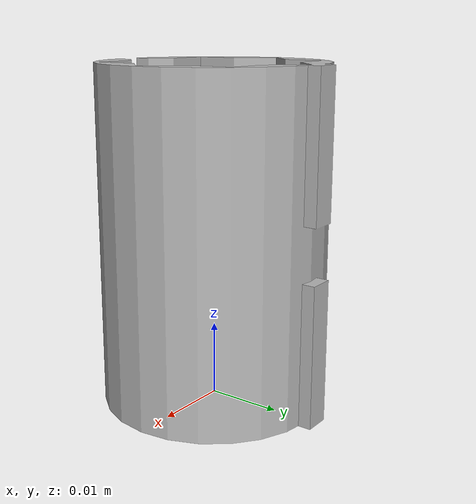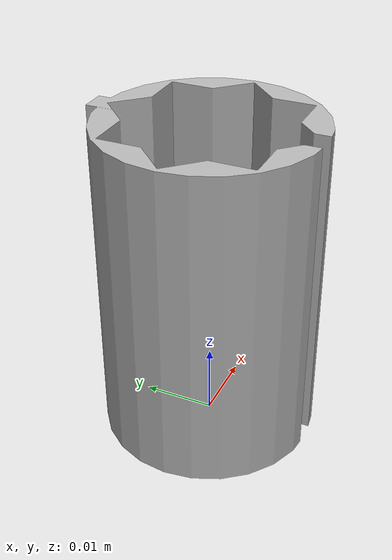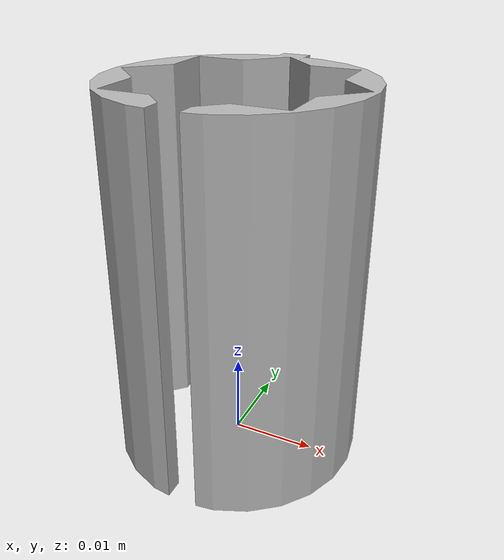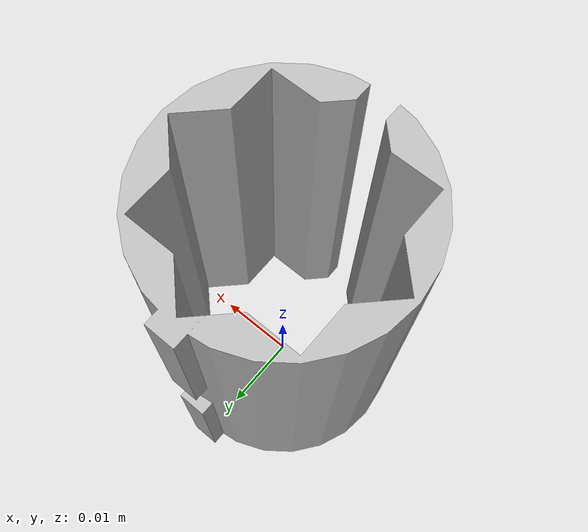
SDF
<?xml version="1.0" ?>
<sdf version="1.4">
  <model name="V20">
    <static>true</static>
    <link name="link">
      <pose>0 0 0 0 0 0</pose>
      <collision name="collision">
        <geometry>
          <mesh>
            <uri>model://V20/meshes/V20.dae</uri>
          </mesh>
        </geometry>
      </collision>
      <visual name="visual">
        <geometry>
          <mesh>
            <uri>model://V20/meshes/V20.dae</uri>
          </mesh>
        </geometry>
      </visual>
    </link>
  </model>
</sdf>
